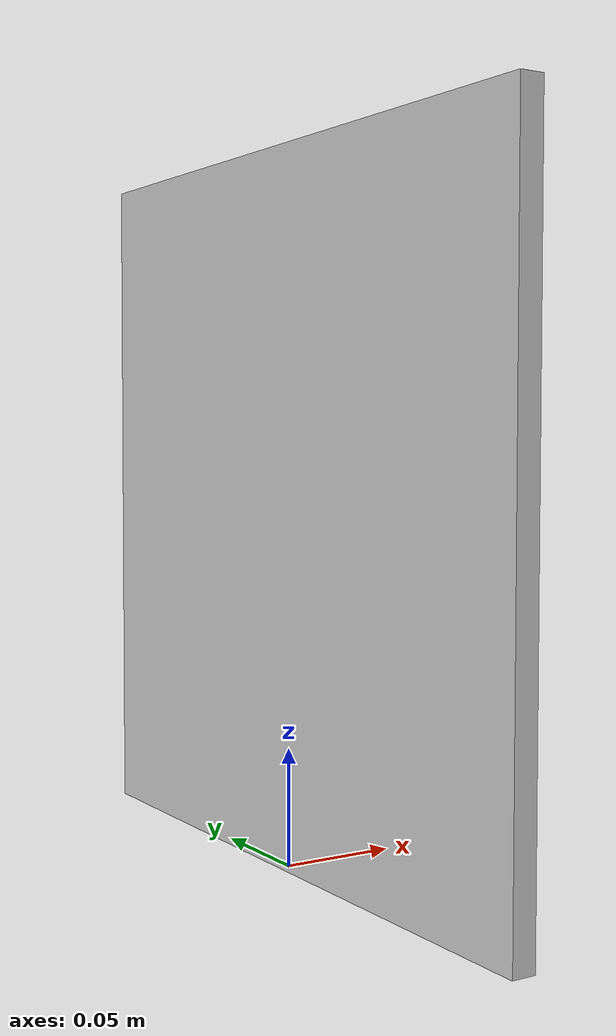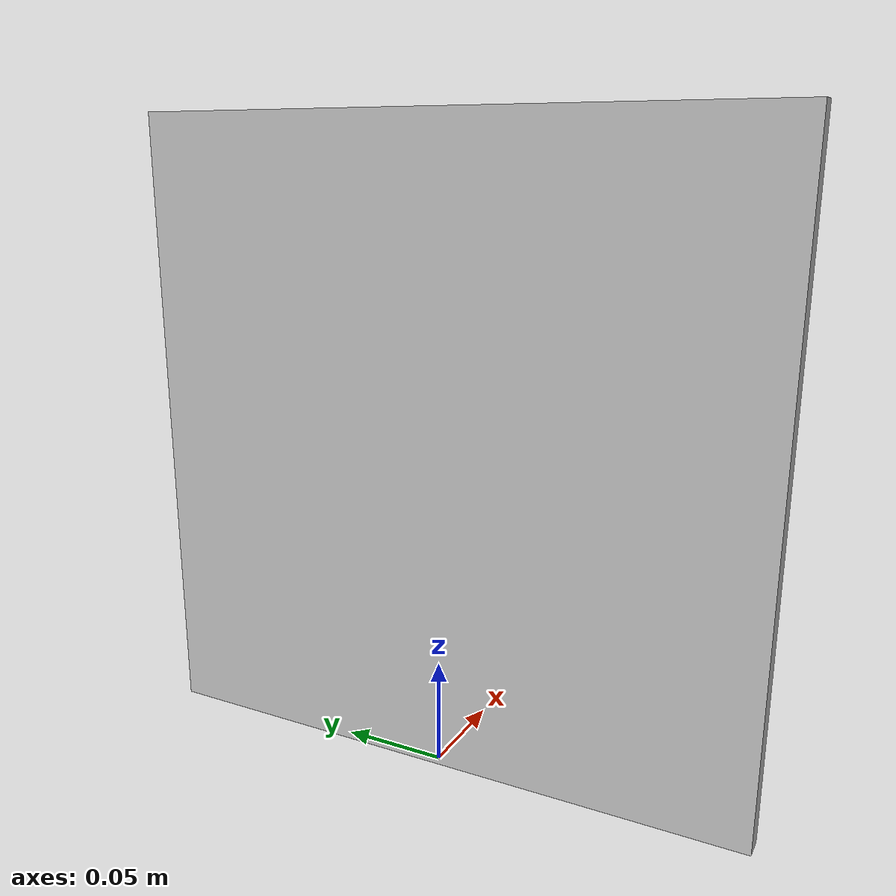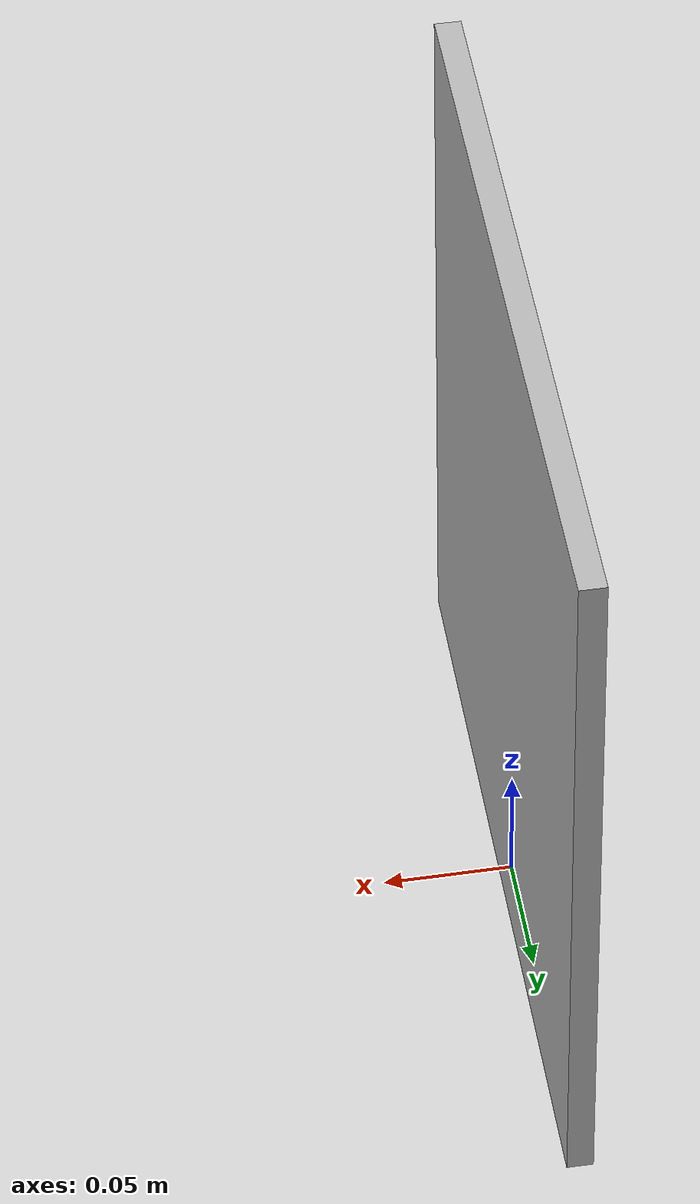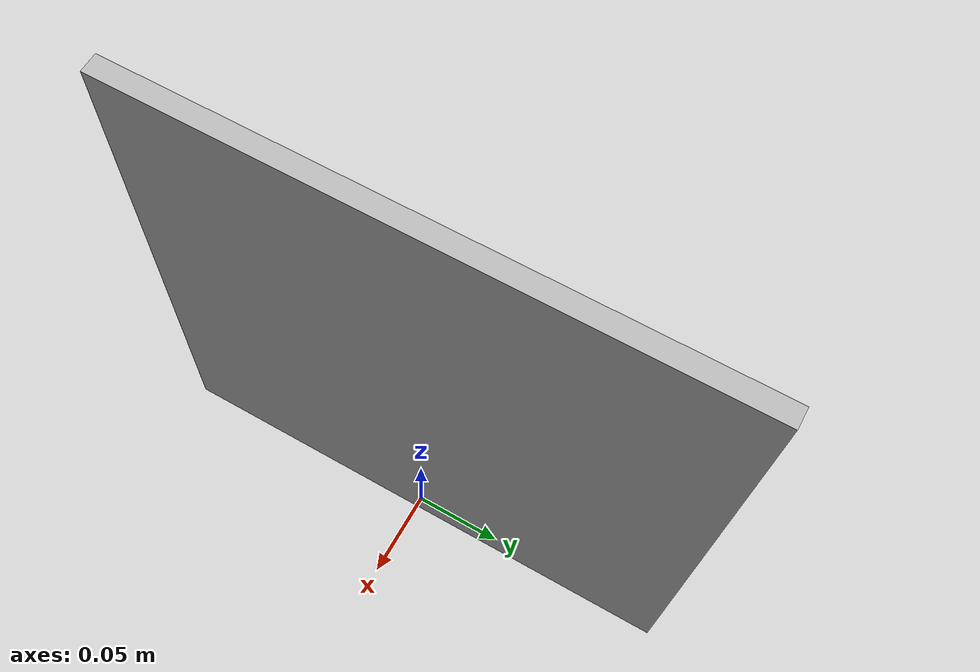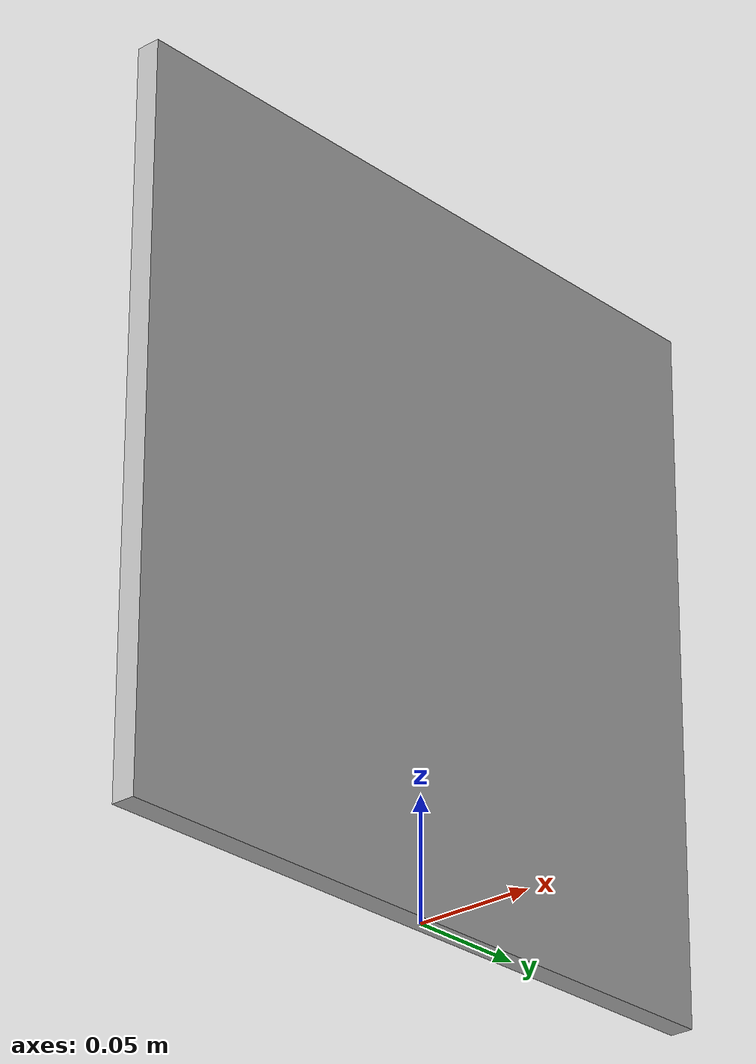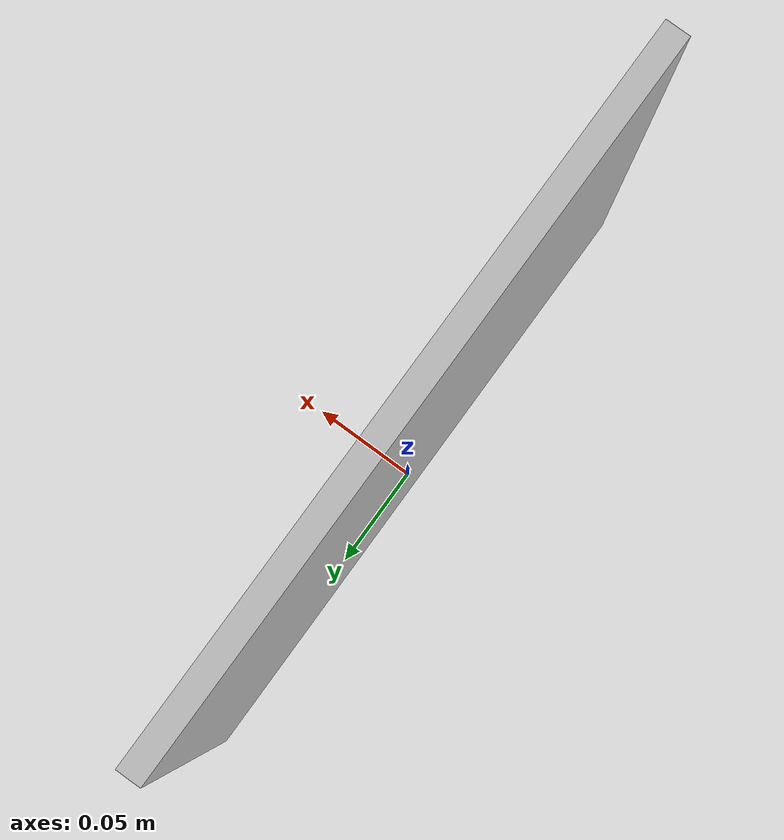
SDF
<?xml version='1.0'?>
<sdf version='1.6'>
  <model name='Apriltag36_11_00002'>
    <link name='main'>
    <pose frame=''>0 0 0.15 1.57 1.57 1.57</pose>
      <visual name='main_Visual'>
        <geometry>
          <box>
          <size>0.3 0.3 0.01</size>
          </box>
        </geometry>
           <material>
          <script>
            <uri>model://Apriltag36_11_00002/materials/scripts</uri>
            <uri>model://Apriltag36_11_00002/materials/textures</uri>
            <name>Apriltag36_11_00002</name>
          </script>
        </material>
      </visual>
     </link>
    <static>1</static>
  </model>
</sdf>
